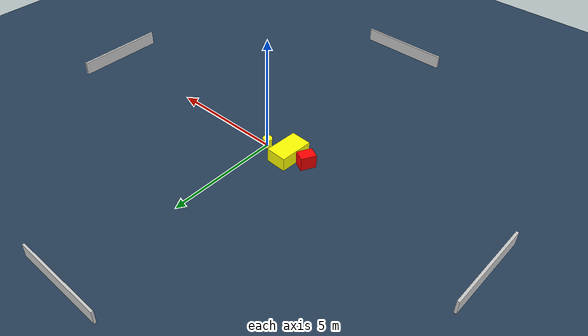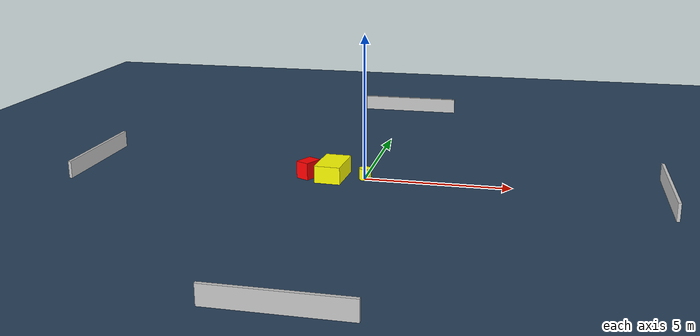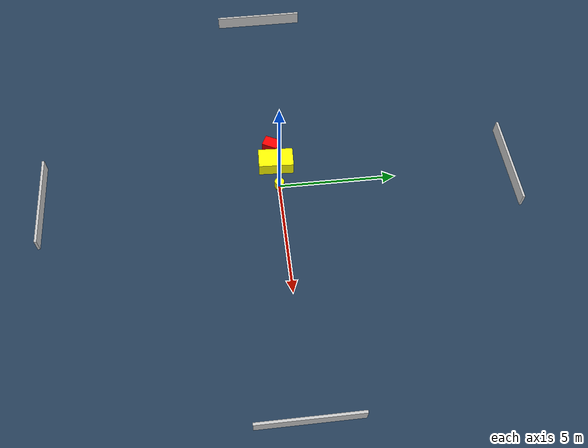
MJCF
<?xml version="1.0" ?>
<mujoco model="generated_environment">
  <option timestep="0.01" integrator="RK4" cone="elliptic"/>
  <default>
    <geom density="1"/>
  </default>
  <asset>
    <texture builtin="gradient" height="3072" name="skybox" rgb1="0.3 0.5 0.7" rgb2="0 0 0" type="skybox" width="512"/>
    <texture builtin="checker" height="300" name="groundplane" rgb1="0.2 0.3 0.4" rgb2="0.1 0.2 0.3" type="2d" width="300"/>
    <material name="groundplane" reflectance="0.2" texrepeat="5 5" texture="groundplane"/>
  </asset>
  <worldbody>
    <light dir="0 0 -1" directional="true" pos="0 0 1.5"/>
    <geom condim="3" friction="0.5 0.005 0.001" material="groundplane" name="floor" pos="0 0 0" size="0 0 0.05" type="plane"/>
    <body name="walls">
      <geom name="wall_1" condim="4" pos="-10.0 0.0 0.3" rgba="0.800000011920929 0.800000011920929 0.800000011920929 1.0" size="0.05 2.0 0.3" type="box"/>
      <geom name="wall_2" condim="4" pos="10.0 0.0 0.3" rgba="0.800000011920929 0.800000011920929 0.800000011920929 1.0" size="0.05 2.0 0.3" type="box"/>
      <geom name="wall_3" condim="4" pos="0.0 -10.0 0.3" rgba="0.800000011920929 0.800000011920929 0.800000011920929 1.0" size="2.0 0.05 0.3" type="box"/>
      <geom name="wall_4" condim="4" pos="0.0 10.0 0.3" rgba="0.800000011920929 0.800000011920929 0.800000011920929 1.0" size="2.0 0.05 0.3" type="box"/>
    </body>
    <body name="robot">
      <joint name="joint_x" type="slide" pos="0 0 0" axis="1 0 0"/>
      <joint name="joint_y" type="slide" pos="0 0 0" axis="0 1 0"/>
      <geom name="robot" type="cylinder" pos="0.0 0.0 0.2" size="0.2 0.2 0.0" mass="5.0" friction="1.0 0.005 0.0001" condim="4" rgba="1.0 1.0 0.0 1.0"/>
    </body>
    <body name="obstacle_1_movable">
      <geom name="obstacle_1_movable" condim="4" pos="-1.131304924218429 -0.03767773924652516 0.3" euler="0 0 357.427937830756" friction="0.0 0.005 0.001" rgba="1.0 1.0 0.0 1.0" size="0.44932546677584706 0.7449087692566945 0.3" type="box" mass="0.1"/>
      <joint type="free"/>
    </body>
    <body name="obstacle_2_static">
      <geom name="obstacle_2_static" condim="4" pos="-1.974140848308384 -0.15541069992023002 0.3" euler="0 0 242.92295661511199" friction="0.0 0.005 0.001" rgba="1.0 0.0 0.0 1.0" size="0.3341119854488933 0.24795566202424998 0.3" type="box"/>
    </body>
  </worldbody>
  <actuator>
    <motor name="actuator_x" joint="joint_x" gear="1" ctrlrange="-1 1"/>
    <motor name="actuator_y" joint="joint_y" gear="1" ctrlrange="-1 1"/>
  </actuator>
</mujoco>
